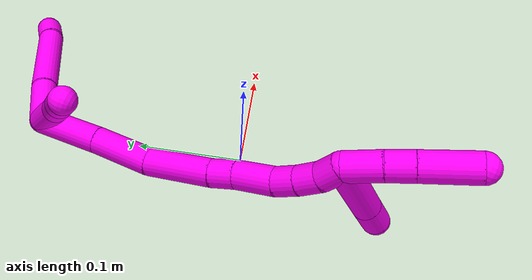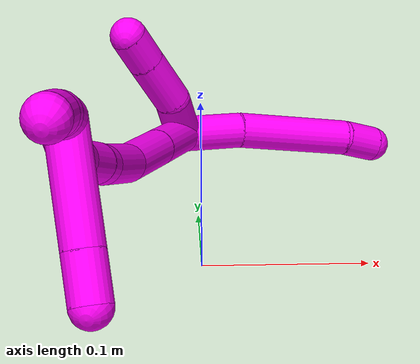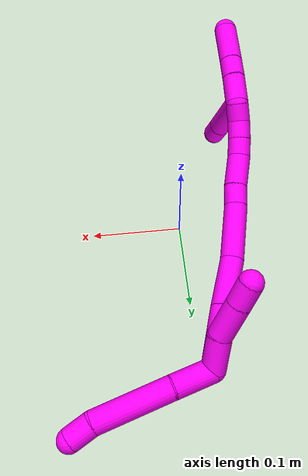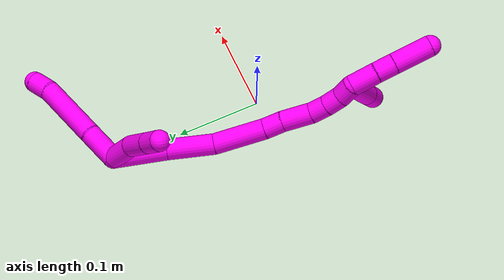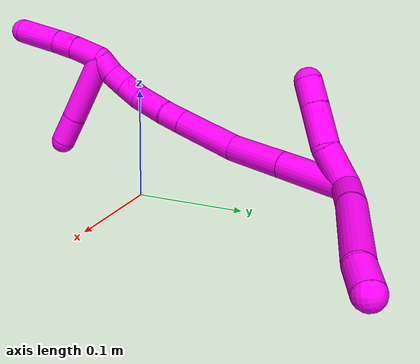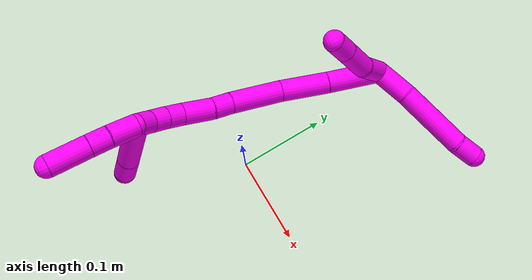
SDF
<sdf version="1.7">
 <world name="default">
  <model name="10">
   <static>0</static>
   <link name="10">
    <collision name="collision-cylinder-e_1_2_8">
     <pose>-0.011152 0.015522 -0.009071 -2.09965 -0.555199 0.921798</pose>
     <geometry><cylinder><radius>0.0125</radius><length>0.042312</length></cylinder></geometry>
     <surface>
      <friction><ode><mu>1.16</mu><mu2>1.16</mu2><slip1>0</slip1><slip2>0</slip2></ode></friction>
      <contact><ode><kp>1e+06</kp><kd>1</kd><max_vel>0</max_vel><min_depth>0.001</min_depth></ode></contact>
     </surface>
    </collision>
    <visual name="visual-cylinder-e_1_2_8">
     <pose>-0.011152 0.015522 -0.009071 -2.09965 -0.555199 0.921798</pose>
     <geometry><cylinder><radius>0.0125</radius><length>0.042312</length></cylinder></geometry>
     <material><ambient>1 0 0.964706 1</ambient></material>
    </visual>
    <collision name="collision-cylinder-e_2_8_9">
     <pose>-0.040697 0.064401 -0.033034 -1.9907 -0.466467 0.702091</pose>
     <geometry><cylinder><radius>0.0125</radius><length>0.081798</length></cylinder></geometry>
     <surface>
      <friction><ode><mu>1.16</mu><mu2>1.16</mu2><slip1>0</slip1><slip2>0</slip2></ode></friction>
      <contact><ode><kp>1e+06</kp><kd>1</kd><max_vel>0</max_vel><min_depth>0.001</min_depth></ode></contact>
     </surface>
    </collision>
    <visual name="visual-cylinder-e_2_8_9">
     <pose>-0.040697 0.064401 -0.033034 -1.9907 -0.466467 0.702091</pose>
     <geometry><cylinder><radius>0.0125</radius><length>0.081798</length></cylinder></geometry>
     <material><ambient>1 0 0.964706 1</ambient></material>
    </visual>
    <collision name="collision-cylinder-e_3_9_6">
     <pose>-0.062138 0.108849 -0.053862 -2.0622 -0.237659 0.39347</pose>
     <geometry><cylinder><radius>0.0125</radius><length>0.02589</length></cylinder></geometry>
     <surface>
      <friction><ode><mu>1.16</mu><mu2>1.16</mu2><slip1>0</slip1><slip2>0</slip2></ode></friction>
      <contact><ode><kp>1e+06</kp><kd>1</kd><max_vel>0</max_vel><min_depth>0.001</min_depth></ode></contact>
     </surface>
    </collision>
    <visual name="visual-cylinder-e_3_9_6">
     <pose>-0.062138 0.108849 -0.053862 -2.0622 -0.237659 0.39347</pose>
     <geometry><cylinder><radius>0.0125</radius><length>0.02589</length></cylinder></geometry>
     <material><ambient>1 0 0.964706 1</ambient></material>
    </visual>
    <collision name="collision-cylinder-e_1_2_10">
     <pose>-0.010865 -0.013362 0.006797 1.10025 -0.627164 -0.392626</pose>
     <geometry><cylinder><radius>0.0125</radius><length>0.03703</length></cylinder></geometry>
     <surface>
      <friction><ode><mu>1.16</mu><mu2>1.16</mu2><slip1>0</slip1><slip2>0</slip2></ode></friction>
      <contact><ode><kp>1e+06</kp><kd>1</kd><max_vel>0</max_vel><min_depth>0.001</min_depth></ode></contact>
     </surface>
    </collision>
    <visual name="visual-cylinder-e_1_2_10">
     <pose>-0.010865 -0.013362 0.006797 1.10025 -0.627164 -0.392626</pose>
     <geometry><cylinder><radius>0.0125</radius><length>0.03703</length></cylinder></geometry>
     <material><ambient>1 0 0.964706 1</ambient></material>
    </visual>
    <collision name="collision-cylinder-e_2_10_11">
     <pose>-0.028627 -0.043939 0.018356 1.30087 -0.368462 -0.281698</pose>
     <geometry><cylinder><radius>0.0125</radius><length>0.038294</length></cylinder></geometry>
     <surface>
      <friction><ode><mu>1.16</mu><mu2>1.16</mu2><slip1>0</slip1><slip2>0</slip2></ode></friction>
      <contact><ode><kp>1e+06</kp><kd>1</kd><max_vel>0</max_vel><min_depth>0.001</min_depth></ode></contact>
     </surface>
    </collision>
    <visual name="visual-cylinder-e_2_10_11">
     <pose>-0.028627 -0.043939 0.018356 1.30087 -0.368462 -0.281698</pose>
     <geometry><cylinder><radius>0.0125</radius><length>0.038294</length></cylinder></geometry>
     <material><ambient>1 0 0.964706 1</ambient></material>
    </visual>
    <collision name="collision-cylinder-e_3_11_5">
     <pose>-0.040081 -0.072191 0.026227 1.29635 -0.378297 -0.287954</pose>
     <geometry><cylinder><radius>0.0125</radius><length>0.024676</length></cylinder></geometry>
     <surface>
      <friction><ode><mu>1.16</mu><mu2>1.16</mu2><slip1>0</slip1><slip2>0</slip2></ode></friction>
      <contact><ode><kp>1e+06</kp><kd>1</kd><max_vel>0</max_vel><min_depth>0.001</min_depth></ode></contact>
     </surface>
    </collision>
    <visual name="visual-cylinder-e_3_11_5">
     <pose>-0.040081 -0.072191 0.026227 1.29635 -0.378297 -0.287954</pose>
     <geometry><cylinder><radius>0.0125</radius><length>0.024676</length></cylinder></geometry>
     <material><ambient>1 0 0.964706 1</ambient></material>
    </visual>
    <collision name="collision-cylinder-e_1_2_12">
     <pose>-0.004731 -0.010568 0.029536 0.343597 -0.149692 -0.02602</pose>
     <geometry><cylinder><radius>0.0125</radius><length>0.063449</length></cylinder></geometry>
     <surface>
      <friction><ode><mu>1.16</mu><mu2>1.16</mu2><slip1>0</slip1><slip2>0</slip2></ode></friction>
      <contact><ode><kp>1e+06</kp><kd>1</kd><max_vel>0</max_vel><min_depth>0.001</min_depth></ode></contact>
     </surface>
    </collision>
    <visual name="visual-cylinder-e_1_2_12">
     <pose>-0.004731 -0.010568 0.029536 0.343597 -0.149692 -0.02602</pose>
     <geometry><cylinder><radius>0.0125</radius><length>0.063449</length></cylinder></geometry>
     <material><ambient>1 0 0.964706 1</ambient></material>
    </visual>
    <collision name="collision-cylinder-e_2_12_13">
     <pose>-0.012606 -0.030804 0.085146 0.355094 -0.112571 -0.02022</pose>
     <geometry><cylinder><radius>0.0125</radius><length>0.055973</length></cylinder></geometry>
     <surface>
      <friction><ode><mu>1.16</mu><mu2>1.16</mu2><slip1>0</slip1><slip2>0</slip2></ode></friction>
      <contact><ode><kp>1e+06</kp><kd>1</kd><max_vel>0</max_vel><min_depth>0.001</min_depth></ode></contact>
     </surface>
    </collision>
    <visual name="visual-cylinder-e_2_12_13">
     <pose>-0.012606 -0.030804 0.085146 0.355094 -0.112571 -0.02022</pose>
     <geometry><cylinder><radius>0.0125</radius><length>0.055973</length></cylinder></geometry>
     <material><ambient>1 0 0.964706 1</ambient></material>
    </visual>
    <collision name="collision-cylinder-e_3_13_14">
     <pose>-0.025424 -0.052196 0.138155 0.410536 -0.31814 -0.066776</pose>
     <geometry><cylinder><radius>0.0125</radius><length>0.061854</length></cylinder></geometry>
     <surface>
      <friction><ode><mu>1.16</mu><mu2>1.16</mu2><slip1>0</slip1><slip2>0</slip2></ode></friction>
      <contact><ode><kp>1e+06</kp><kd>1</kd><max_vel>0</max_vel><min_depth>0.001</min_depth></ode></contact>
     </surface>
    </collision>
    <visual name="visual-cylinder-e_3_13_14">
     <pose>-0.025424 -0.052196 0.138155 0.410536 -0.31814 -0.066776</pose>
     <geometry><cylinder><radius>0.0125</radius><length>0.061854</length></cylinder></geometry>
     <material><ambient>1 0 0.964706 1</ambient></material>
    </visual>
    <collision name="collision-cylinder-e_4_14_15">
     <pose>-0.039661 -0.067908 0.174552 0.398855 -0.418137 -0.085712</pose>
     <geometry><cylinder><radius>0.0125</radius><length>0.022474</length></cylinder></geometry>
     <surface>
      <friction><ode><mu>1.16</mu><mu2>1.16</mu2><slip1>0</slip1><slip2>0</slip2></ode></friction>
      <contact><ode><kp>1e+06</kp><kd>1</kd><max_vel>0</max_vel><min_depth>0.001</min_depth></ode></contact>
     </surface>
    </collision>
    <visual name="visual-cylinder-e_4_14_15">
     <pose>-0.039661 -0.067908 0.174552 0.398855 -0.418137 -0.085712</pose>
     <geometry><cylinder><radius>0.0125</radius><length>0.022474</length></cylinder></geometry>
     <material><ambient>1 0 0.964706 1</ambient></material>
    </visual>
    <collision name="collision-cylinder-e_5_15_16">
     <pose>-0.049929 -0.079681 0.199073 0.477166 -0.324679 -0.079626</pose>
     <geometry><cylinder><radius>0.0125</radius><length>0.035772</length></cylinder></geometry>
     <surface>
      <friction><ode><mu>1.16</mu><mu2>1.16</mu2><slip1>0</slip1><slip2>0</slip2></ode></friction>
      <contact><ode><kp>1e+06</kp><kd>1</kd><max_vel>0</max_vel><min_depth>0.001</min_depth></ode></contact>
     </surface>
    </collision>
    <visual name="visual-cylinder-e_5_15_16">
     <pose>-0.049929 -0.079681 0.199073 0.477166 -0.324679 -0.079626</pose>
     <geometry><cylinder><radius>0.0125</radius><length>0.035772</length></cylinder></geometry>
     <material><ambient>1 0 0.964706 1</ambient></material>
    </visual>
    <collision name="collision-cylinder-e_6_16_17">
     <pose>-0.060792 -0.092334 0.221404 0.589806 -0.532452 -0.165293</pose>
     <geometry><cylinder><radius>0.0125</radius><length>0.020316</length></cylinder></geometry>
     <surface>
      <friction><ode><mu>1.16</mu><mu2>1.16</mu2><slip1>0</slip1><slip2>0</slip2></ode></friction>
      <contact><ode><kp>1e+06</kp><kd>1</kd><max_vel>0</max_vel><min_depth>0.001</min_depth></ode></contact>
     </surface>
    </collision>
    <visual name="visual-cylinder-e_6_16_17">
     <pose>-0.060792 -0.092334 0.221404 0.589806 -0.532452 -0.165293</pose>
     <geometry><cylinder><radius>0.0125</radius><length>0.020316</length></cylinder></geometry>
     <material><ambient>1 0 0.964706 1</ambient></material>
    </visual>
    <collision name="collision-cylinder-e_7_17_18">
     <pose>-0.071895 -0.101926 0.235244 0.623631 -0.633899 -0.210671</pose>
     <geometry><cylinder><radius>0.0125</radius><length>0.02008</length></cylinder></geometry>
     <surface>
      <friction><ode><mu>1.16</mu><mu2>1.16</mu2><slip1>0</slip1><slip2>0</slip2></ode></friction>
      <contact><ode><kp>1e+06</kp><kd>1</kd><max_vel>0</max_vel><min_depth>0.001</min_depth></ode></contact>
     </surface>
    </collision>
    <visual name="visual-cylinder-e_7_17_18">
     <pose>-0.071895 -0.101926 0.235244 0.623631 -0.633899 -0.210671</pose>
     <geometry><cylinder><radius>0.0125</radius><length>0.02008</length></cylinder></geometry>
     <material><ambient>1 0 0.964706 1</ambient></material>
    </visual>
    <collision name="collision-cylinder-e_8_18_1">
     <pose>-0.085314 -0.111749 0.246169 0.863477 -0.839253 -0.405437</pose>
     <geometry><cylinder><radius>0.0125</radius><length>0.020082</length></cylinder></geometry>
     <surface>
      <friction><ode><mu>1.16</mu><mu2>1.16</mu2><slip1>0</slip1><slip2>0</slip2></ode></friction>
      <contact><ode><kp>1e+06</kp><kd>1</kd><max_vel>0</max_vel><min_depth>0.001</min_depth></ode></contact>
     </surface>
    </collision>
    <visual name="visual-cylinder-e_8_18_1">
     <pose>-0.085314 -0.111749 0.246169 0.863477 -0.839253 -0.405437</pose>
     <geometry><cylinder><radius>0.0125</radius><length>0.020082</length></cylinder></geometry>
     <material><ambient>1 0 0.964706 1</ambient></material>
    </visual>
    <collision name="collision-cylinder-e_1_1_19">
     <pose>-0.100207 -0.121188 0.263785 0.316431 -0.488905 -0.079554</pose>
     <geometry><cylinder><radius>0.0125</radius><length>0.031602</length></cylinder></geometry>
     <surface>
      <friction><ode><mu>1.16</mu><mu2>1.16</mu2><slip1>0</slip1><slip2>0</slip2></ode></friction>
      <contact><ode><kp>1e+06</kp><kd>1</kd><max_vel>0</max_vel><min_depth>0.001</min_depth></ode></contact>
     </surface>
    </collision>
    <visual name="visual-cylinder-e_1_1_19">
     <pose>-0.100207 -0.121188 0.263785 0.316431 -0.488905 -0.079554</pose>
     <geometry><cylinder><radius>0.0125</radius><length>0.031602</length></cylinder></geometry>
     <material><ambient>1 0 0.964706 1</ambient></material>
    </visual>
    <collision name="collision-cylinder-e_2_19_20">
     <pose>-0.11256 -0.128016 0.286902 0.247019 -0.451574 -0.057016</pose>
     <geometry><cylinder><radius>0.0125</radius><length>0.022603</length></cylinder></geometry>
     <surface>
      <friction><ode><mu>1.16</mu><mu2>1.16</mu2><slip1>0</slip1><slip2>0</slip2></ode></friction>
      <contact><ode><kp>1e+06</kp><kd>1</kd><max_vel>0</max_vel><min_depth>0.001</min_depth></ode></contact>
     </surface>
    </collision>
    <visual name="visual-cylinder-e_2_19_20">
     <pose>-0.11256 -0.128016 0.286902 0.247019 -0.451574 -0.057016</pose>
     <geometry><cylinder><radius>0.0125</radius><length>0.022603</length></cylinder></geometry>
     <material><ambient>1 0 0.964706 1</ambient></material>
    </visual>
    <collision name="collision-cylinder-e_3_20_4">
     <pose>-0.12711 -0.135009 0.317047 0.21865 -0.433503 -0.048333</pose>
     <geometry><cylinder><radius>0.0125</radius><length>0.045795</length></cylinder></geometry>
     <surface>
      <friction><ode><mu>1.16</mu><mu2>1.16</mu2><slip1>0</slip1><slip2>0</slip2></ode></friction>
      <contact><ode><kp>1e+06</kp><kd>1</kd><max_vel>0</max_vel><min_depth>0.001</min_depth></ode></contact>
     </surface>
    </collision>
    <visual name="visual-cylinder-e_3_20_4">
     <pose>-0.12711 -0.135009 0.317047 0.21865 -0.433503 -0.048333</pose>
     <geometry><cylinder><radius>0.0125</radius><length>0.045795</length></cylinder></geometry>
     <material><ambient>1 0 0.964706 1</ambient></material>
    </visual>
    <collision name="collision-cylinder-e_1_1_21">
     <pose>-0.078029 -0.092674 0.271541 -0.855222 0.431746 -0.199214</pose>
     <geometry><cylinder><radius>0.0125</radius><length>0.070533</length></cylinder></geometry>
     <surface>
      <friction><ode><mu>1.16</mu><mu2>1.16</mu2><slip1>0</slip1><slip2>0</slip2></ode></friction>
      <contact><ode><kp>1e+06</kp><kd>1</kd><max_vel>0</max_vel><min_depth>0.001</min_depth></ode></contact>
     </surface>
    </collision>
    <visual name="visual-cylinder-e_1_1_21">
     <pose>-0.078029 -0.092674 0.271541 -0.855222 0.431746 -0.199214</pose>
     <geometry><cylinder><radius>0.0125</radius><length>0.070533</length></cylinder></geometry>
     <material><ambient>1 0 0.964706 1</ambient></material>
    </visual>
    <collision name="collision-cylinder-e_2_21_3">
     <pose>-0.057168 -0.058462 0.301447 -0.845877 0.427095 -0.194596</pose>
     <geometry><cylinder><radius>0.0125</radius><length>0.029467</length></cylinder></geometry>
     <surface>
      <friction><ode><mu>1.16</mu><mu2>1.16</mu2><slip1>0</slip1><slip2>0</slip2></ode></friction>
      <contact><ode><kp>1e+06</kp><kd>1</kd><max_vel>0</max_vel><min_depth>0.001</min_depth></ode></contact>
     </surface>
    </collision>
    <visual name="visual-cylinder-e_2_21_3">
     <pose>-0.057168 -0.058462 0.301447 -0.845877 0.427095 -0.194596</pose>
     <geometry><cylinder><radius>0.0125</radius><length>0.029467</length></cylinder></geometry>
     <material><ambient>1 0 0.964706 1</ambient></material>
    </visual>
    <collision name="collision-sphere-3">
     <pose>-0.051065 -0.048424 0.310339 0 -0 0</pose>
     <geometry><sphere><radius>0.0125</radius></sphere></geometry>
     <surface>
      <friction><ode><mu>1.16</mu><mu2>1.16</mu2><slip1>0</slip1><slip2>0</slip2></ode></friction>
      <contact><ode><kp>1e+06</kp><kd>1</kd><max_vel>0</max_vel><min_depth>0.001</min_depth></ode></contact>
     </surface>
    </collision>
    <visual name="visual-sphere-3">
     <pose>-0.051065 -0.048424 0.310339 0 -0 0</pose>
     <geometry><sphere><radius>0.0125</radius></sphere></geometry>
     <material><ambient>1 0 0.964706 1</ambient></material>
    </visual>
    <collision name="collision-sphere-21">
     <pose>-0.063271 -0.0685 0.292555 0 -0 0</pose>
     <geometry><sphere><radius>0.0125</radius></sphere></geometry>
     <surface>
      <friction><ode><mu>1.16</mu><mu2>1.16</mu2><slip1>0</slip1><slip2>0</slip2></ode></friction>
      <contact><ode><kp>1e+06</kp><kd>1</kd><max_vel>0</max_vel><min_depth>0.001</min_depth></ode></contact>
     </surface>
    </collision>
    <visual name="visual-sphere-21">
     <pose>-0.063271 -0.0685 0.292555 0 -0 0</pose>
     <geometry><sphere><radius>0.0125</radius></sphere></geometry>
     <material><ambient>1 0 0.964706 1</ambient></material>
    </visual>
    <collision name="collision-sphere-4">
     <pose>-0.136728 -0.139517 0.337332 0 -0 0</pose>
     <geometry><sphere><radius>0.0125</radius></sphere></geometry>
     <surface>
      <friction><ode><mu>1.16</mu><mu2>1.16</mu2><slip1>0</slip1><slip2>0</slip2></ode></friction>
      <contact><ode><kp>1e+06</kp><kd>1</kd><max_vel>0</max_vel><min_depth>0.001</min_depth></ode></contact>
     </surface>
    </collision>
    <visual name="visual-sphere-4">
     <pose>-0.136728 -0.139517 0.337332 0 -0 0</pose>
     <geometry><sphere><radius>0.0125</radius></sphere></geometry>
     <material><ambient>1 0 0.964706 1</ambient></material>
    </visual>
    <collision name="collision-sphere-20">
     <pose>-0.117492 -0.130502 0.296763 0 -0 0</pose>
     <geometry><sphere><radius>0.0125</radius></sphere></geometry>
     <surface>
      <friction><ode><mu>1.16</mu><mu2>1.16</mu2><slip1>0</slip1><slip2>0</slip2></ode></friction>
      <contact><ode><kp>1e+06</kp><kd>1</kd><max_vel>0</max_vel><min_depth>0.001</min_depth></ode></contact>
     </surface>
    </collision>
    <visual name="visual-sphere-20">
     <pose>-0.117492 -0.130502 0.296763 0 -0 0</pose>
     <geometry><sphere><radius>0.0125</radius></sphere></geometry>
     <material><ambient>1 0 0.964706 1</ambient></material>
    </visual>
    <collision name="collision-sphere-11">
     <pose>-0.035524 -0.061154 0.023119 0 -0 0</pose>
     <geometry><sphere><radius>0.0125</radius></sphere></geometry>
     <surface>
      <friction><ode><mu>1.16</mu><mu2>1.16</mu2><slip1>0</slip1><slip2>0</slip2></ode></friction>
      <contact><ode><kp>1e+06</kp><kd>1</kd><max_vel>0</max_vel><min_depth>0.001</min_depth></ode></contact>
     </surface>
    </collision>
    <visual name="visual-sphere-11">
     <pose>-0.035524 -0.061154 0.023119 0 -0 0</pose>
     <geometry><sphere><radius>0.0125</radius></sphere></geometry>
     <material><ambient>1 0 0.964706 1</ambient></material>
    </visual>
    <collision name="collision-sphere-10">
     <pose>-0.021731 -0.026724 0.013593 0 -0 0</pose>
     <geometry><sphere><radius>0.0125</radius></sphere></geometry>
     <surface>
      <friction><ode><mu>1.16</mu><mu2>1.16</mu2><slip1>0</slip1><slip2>0</slip2></ode></friction>
      <contact><ode><kp>1e+06</kp><kd>1</kd><max_vel>0</max_vel><min_depth>0.001</min_depth></ode></contact>
     </surface>
    </collision>
    <visual name="visual-sphere-10">
     <pose>-0.021731 -0.026724 0.013593 0 -0 0</pose>
     <geometry><sphere><radius>0.0125</radius></sphere></geometry>
     <material><ambient>1 0 0.964706 1</ambient></material>
    </visual>
    <collision name="collision-sphere-6">
     <pose>-0.065186 0.119942 -0.059799 0 -0 0</pose>
     <geometry><sphere><radius>0.0125</radius></sphere></geometry>
     <surface>
      <friction><ode><mu>1.16</mu><mu2>1.16</mu2><slip1>0</slip1><slip2>0</slip2></ode></friction>
      <contact><ode><kp>1e+06</kp><kd>1</kd><max_vel>0</max_vel><min_depth>0.001</min_depth></ode></contact>
     </surface>
    </collision>
    <visual name="visual-sphere-6">
     <pose>-0.065186 0.119942 -0.059799 0 -0 0</pose>
     <geometry><sphere><radius>0.0125</radius></sphere></geometry>
     <material><ambient>1 0 0.964706 1</ambient></material>
    </visual>
    <collision name="collision-sphere-9">
     <pose>-0.05909 0.097757 -0.047926 0 -0 0</pose>
     <geometry><sphere><radius>0.0125</radius></sphere></geometry>
     <surface>
      <friction><ode><mu>1.16</mu><mu2>1.16</mu2><slip1>0</slip1><slip2>0</slip2></ode></friction>
      <contact><ode><kp>1e+06</kp><kd>1</kd><max_vel>0</max_vel><min_depth>0.001</min_depth></ode></contact>
     </surface>
    </collision>
    <visual name="visual-sphere-9">
     <pose>-0.05909 0.097757 -0.047926 0 -0 0</pose>
     <geometry><sphere><radius>0.0125</radius></sphere></geometry>
     <material><ambient>1 0 0.964706 1</ambient></material>
    </visual>
    <collision name="collision-sphere-2">
     <geometry><sphere><radius>0.0125</radius></sphere></geometry>
     <surface>
      <friction><ode><mu>1.16</mu><mu2>1.16</mu2><slip1>0</slip1><slip2>0</slip2></ode></friction>
      <contact><ode><kp>1e+06</kp><kd>1</kd><max_vel>0</max_vel><min_depth>0.001</min_depth></ode></contact>
     </surface>
    </collision>
    <visual name="visual-sphere-2">
     <geometry><sphere><radius>0.0125</radius></sphere></geometry>
     <material><ambient>1 0 0.964706 1</ambient></material>
    </visual>
    <collision name="collision-sphere-19">
     <pose>-0.107628 -0.125529 0.277042 0 -0 0</pose>
     <geometry><sphere><radius>0.0125</radius></sphere></geometry>
     <surface>
      <friction><ode><mu>1.16</mu><mu2>1.16</mu2><slip1>0</slip1><slip2>0</slip2></ode></friction>
      <contact><ode><kp>1e+06</kp><kd>1</kd><max_vel>0</max_vel><min_depth>0.001</min_depth></ode></contact>
     </surface>
    </collision>
    <visual name="visual-sphere-19">
     <pose>-0.107628 -0.125529 0.277042 0 -0 0</pose>
     <geometry><sphere><radius>0.0125</radius></sphere></geometry>
     <material><ambient>1 0 0.964706 1</ambient></material>
    </visual>
    <collision name="collision-sphere-8">
     <pose>-0.022303 0.031044 -0.018142 0 -0 0</pose>
     <geometry><sphere><radius>0.0125</radius></sphere></geometry>
     <surface>
      <friction><ode><mu>1.16</mu><mu2>1.16</mu2><slip1>0</slip1><slip2>0</slip2></ode></friction>
      <contact><ode><kp>1e+06</kp><kd>1</kd><max_vel>0</max_vel><min_depth>0.001</min_depth></ode></contact>
     </surface>
    </collision>
    <visual name="visual-sphere-8">
     <pose>-0.022303 0.031044 -0.018142 0 -0 0</pose>
     <geometry><sphere><radius>0.0125</radius></sphere></geometry>
     <material><ambient>1 0 0.964706 1</ambient></material>
    </visual>
    <collision name="collision-sphere-5">
     <pose>-0.044638 -0.083228 0.029334 0 -0 0</pose>
     <geometry><sphere><radius>0.0125</radius></sphere></geometry>
     <surface>
      <friction><ode><mu>1.16</mu><mu2>1.16</mu2><slip1>0</slip1><slip2>0</slip2></ode></friction>
      <contact><ode><kp>1e+06</kp><kd>1</kd><max_vel>0</max_vel><min_depth>0.001</min_depth></ode></contact>
     </surface>
    </collision>
    <visual name="visual-sphere-5">
     <pose>-0.044638 -0.083228 0.029334 0 -0 0</pose>
     <geometry><sphere><radius>0.0125</radius></sphere></geometry>
     <material><ambient>1 0 0.964706 1</ambient></material>
    </visual>
    <collision name="collision-sphere-12">
     <pose>-0.009462 -0.021135 0.059072 0 -0 0</pose>
     <geometry><sphere><radius>0.0125</radius></sphere></geometry>
     <surface>
      <friction><ode><mu>1.16</mu><mu2>1.16</mu2><slip1>0</slip1><slip2>0</slip2></ode></friction>
      <contact><ode><kp>1e+06</kp><kd>1</kd><max_vel>0</max_vel><min_depth>0.001</min_depth></ode></contact>
     </surface>
    </collision>
    <visual name="visual-sphere-12">
     <pose>-0.009462 -0.021135 0.059072 0 -0 0</pose>
     <geometry><sphere><radius>0.0125</radius></sphere></geometry>
     <material><ambient>1 0 0.964706 1</ambient></material>
    </visual>
    <collision name="collision-sphere-13">
     <pose>-0.01575 -0.040473 0.111221 0 -0 0</pose>
     <geometry><sphere><radius>0.0125</radius></sphere></geometry>
     <surface>
      <friction><ode><mu>1.16</mu><mu2>1.16</mu2><slip1>0</slip1><slip2>0</slip2></ode></friction>
      <contact><ode><kp>1e+06</kp><kd>1</kd><max_vel>0</max_vel><min_depth>0.001</min_depth></ode></contact>
     </surface>
    </collision>
    <visual name="visual-sphere-13">
     <pose>-0.01575 -0.040473 0.111221 0 -0 0</pose>
     <geometry><sphere><radius>0.0125</radius></sphere></geometry>
     <material><ambient>1 0 0.964706 1</ambient></material>
    </visual>
    <collision name="collision-sphere-14">
     <pose>-0.035098 -0.06392 0.165089 0 -0 0</pose>
     <geometry><sphere><radius>0.0125</radius></sphere></geometry>
     <surface>
      <friction><ode><mu>1.16</mu><mu2>1.16</mu2><slip1>0</slip1><slip2>0</slip2></ode></friction>
      <contact><ode><kp>1e+06</kp><kd>1</kd><max_vel>0</max_vel><min_depth>0.001</min_depth></ode></contact>
     </surface>
    </collision>
    <visual name="visual-sphere-14">
     <pose>-0.035098 -0.06392 0.165089 0 -0 0</pose>
     <geometry><sphere><radius>0.0125</radius></sphere></geometry>
     <material><ambient>1 0 0.964706 1</ambient></material>
    </visual>
    <collision name="collision-sphere-15">
     <pose>-0.044224 -0.071896 0.184015 0 -0 0</pose>
     <geometry><sphere><radius>0.0125</radius></sphere></geometry>
     <surface>
      <friction><ode><mu>1.16</mu><mu2>1.16</mu2><slip1>0</slip1><slip2>0</slip2></ode></friction>
      <contact><ode><kp>1e+06</kp><kd>1</kd><max_vel>0</max_vel><min_depth>0.001</min_depth></ode></contact>
     </surface>
    </collision>
    <visual name="visual-sphere-15">
     <pose>-0.044224 -0.071896 0.184015 0 -0 0</pose>
     <geometry><sphere><radius>0.0125</radius></sphere></geometry>
     <material><ambient>1 0 0.964706 1</ambient></material>
    </visual>
    <collision name="collision-sphere-16">
     <pose>-0.055635 -0.087466 0.21413 0 -0 0</pose>
     <geometry><sphere><radius>0.0125</radius></sphere></geometry>
     <surface>
      <friction><ode><mu>1.16</mu><mu2>1.16</mu2><slip1>0</slip1><slip2>0</slip2></ode></friction>
      <contact><ode><kp>1e+06</kp><kd>1</kd><max_vel>0</max_vel><min_depth>0.001</min_depth></ode></contact>
     </surface>
    </collision>
    <visual name="visual-sphere-16">
     <pose>-0.055635 -0.087466 0.21413 0 -0 0</pose>
     <geometry><sphere><radius>0.0125</radius></sphere></geometry>
     <material><ambient>1 0 0.964706 1</ambient></material>
    </visual>
    <collision name="collision-sphere-17">
     <pose>-0.065949 -0.097202 0.228677 0 -0 0</pose>
     <geometry><sphere><radius>0.0125</radius></sphere></geometry>
     <surface>
      <friction><ode><mu>1.16</mu><mu2>1.16</mu2><slip1>0</slip1><slip2>0</slip2></ode></friction>
      <contact><ode><kp>1e+06</kp><kd>1</kd><max_vel>0</max_vel><min_depth>0.001</min_depth></ode></contact>
     </surface>
    </collision>
    <visual name="visual-sphere-17">
     <pose>-0.065949 -0.097202 0.228677 0 -0 0</pose>
     <geometry><sphere><radius>0.0125</radius></sphere></geometry>
     <material><ambient>1 0 0.964706 1</ambient></material>
    </visual>
    <collision name="collision-sphere-18">
     <pose>-0.077842 -0.10665 0.241811 0 -0 0</pose>
     <geometry><sphere><radius>0.0125</radius></sphere></geometry>
     <surface>
      <friction><ode><mu>1.16</mu><mu2>1.16</mu2><slip1>0</slip1><slip2>0</slip2></ode></friction>
      <contact><ode><kp>1e+06</kp><kd>1</kd><max_vel>0</max_vel><min_depth>0.001</min_depth></ode></contact>
     </surface>
    </collision>
    <visual name="visual-sphere-18">
     <pose>-0.077842 -0.10665 0.241811 0 -0 0</pose>
     <geometry><sphere><radius>0.0125</radius></sphere></geometry>
     <material><ambient>1 0 0.964706 1</ambient></material>
    </visual>
    <collision name="collision-sphere-1">
     <pose>-0.092786 -0.116847 0.250528 0 -0 0</pose>
     <geometry><sphere><radius>0.0125</radius></sphere></geometry>
     <surface>
      <friction><ode><mu>1.16</mu><mu2>1.16</mu2><slip1>0</slip1><slip2>0</slip2></ode></friction>
      <contact><ode><kp>1e+06</kp><kd>1</kd><max_vel>0</max_vel><min_depth>0.001</min_depth></ode></contact>
     </surface>
    </collision>
    <visual name="visual-sphere-1">
     <pose>-0.092786 -0.116847 0.250528 0 -0 0</pose>
     <geometry><sphere><radius>0.0125</radius></sphere></geometry>
     <material><ambient>1 0 0.964706 1</ambient></material>
    </visual>
    <inertial>
     <pose>-0.048353 -0.043397 0.126522 0 -0 0</pose>
     <mass>0.75</mass>
     <inertia><ixx>0.000171</ixx><ixy>0</ixy><ixz>0</ixz><iyy>0.00013</iyy><iyz>0</iyz><izz>4.1e-05</izz></inertia>
    </inertial>
   </link>
   <pose>-0.008947 0.188582 0.033147 -1.92823 0.76465 2.72619</pose>
  </model>
 </world>
</sdf>
